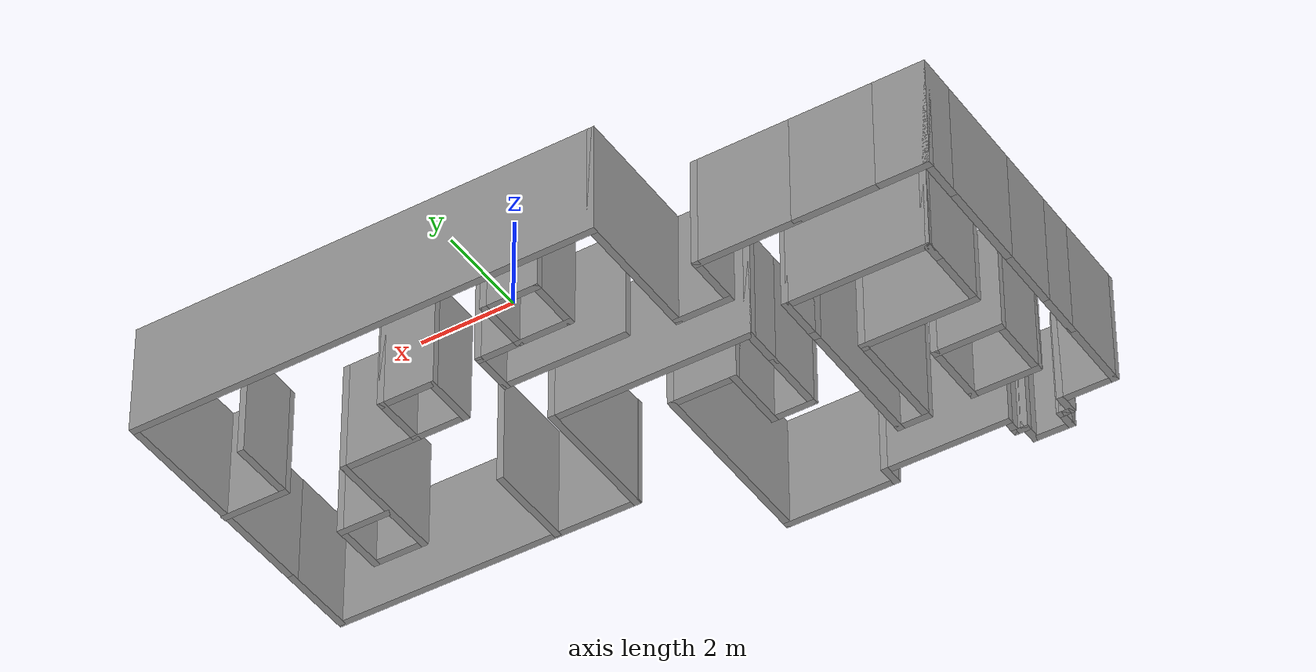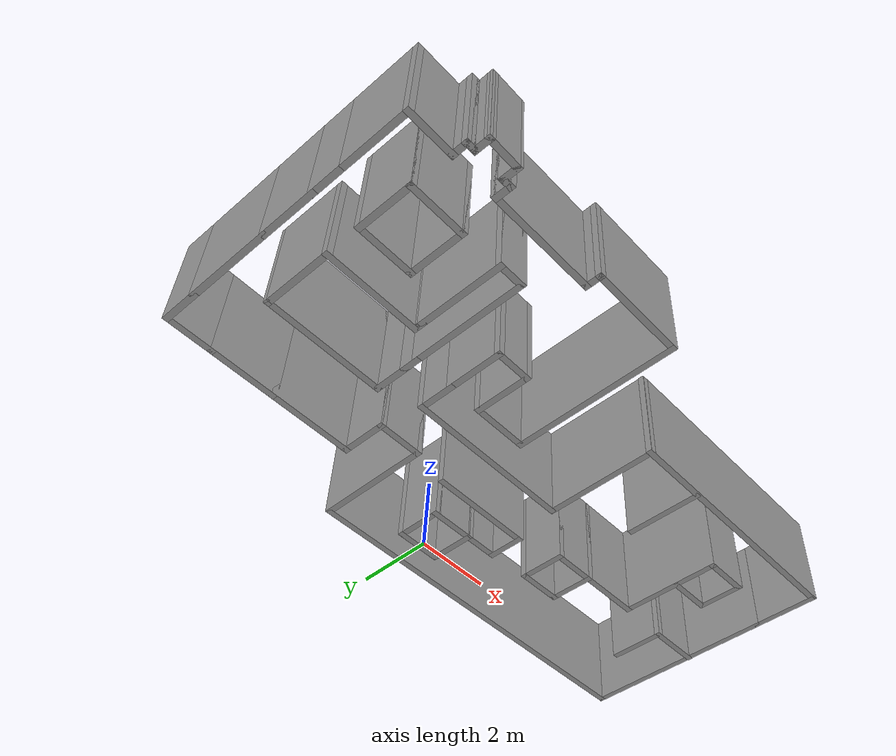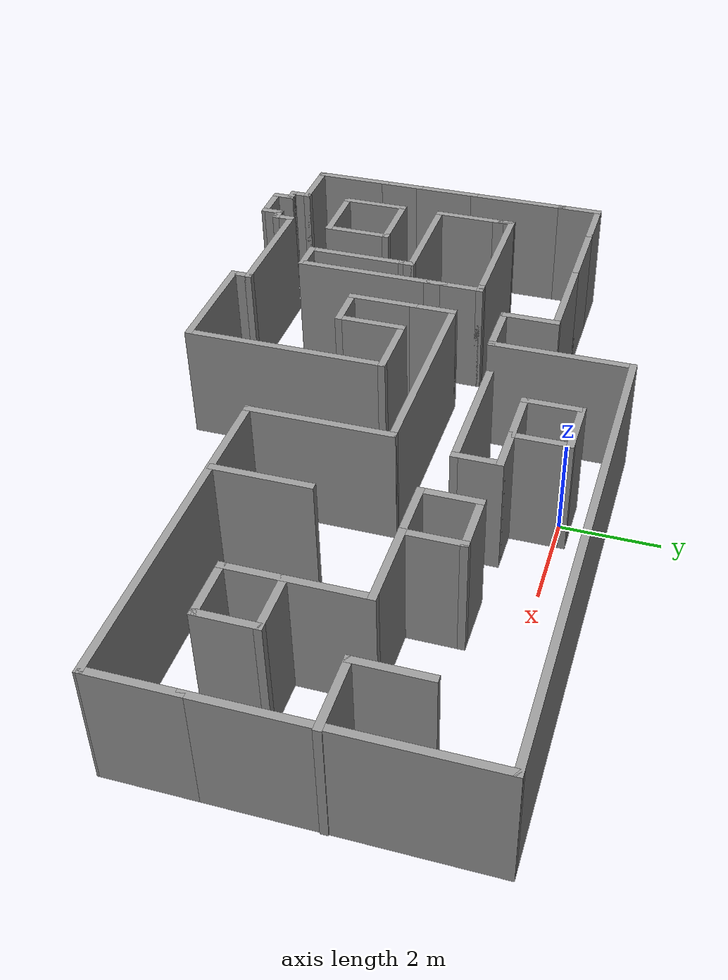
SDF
<?xml version='1.0'?>
<sdf version='1.7'>
  <model name='museum_final'>
    <pose>-0.132026 -3.75187 0 0 -0 0</pose>
    <link name='Wall_0'>
      <collision name='Wall_0_Collision'>
        <geometry>
          <box>
            <size>0.5 0.15 2.5</size>
          </box>
        </geometry>
        <pose>0 0 1.25 0 -0 0</pose>
      </collision>
      <visual name='Wall_0_Visual'>
        <pose>0 0 1.25 0 -0 0</pose>
        <geometry>
          <box>
            <size>0.5 0.15 2.5</size>
          </box>
        </geometry>
        <material>
          <script>
            <uri>file://media/materials/scripts/gazebo.material</uri>
            <name>Gazebo/Grey</name>
          </script>
          <ambient>1 1 1 1</ambient>
        </material>
        <meta>
          <layer>0</layer>
        </meta>
      </visual>
      <pose>-3.16052 -4.0645 0 0 -0 1.5708</pose>
    </link>
    <link name='Wall_1'>
      <collision name='Wall_1_Collision'>
        <geometry>
          <box>
            <size>2.75 0.15 2.5</size>
          </box>
        </geometry>
        <pose>0 0 1.25 0 -0 0</pose>
      </collision>
      <visual name='Wall_1_Visual'>
        <pose>0 0 1.25 0 -0 0</pose>
        <geometry>
          <box>
            <size>2.75 0.15 2.5</size>
          </box>
        </geometry>
        <material>
          <script>
            <uri>file://media/materials/scripts/gazebo.material</uri>
            <name>Gazebo/Grey</name>
          </script>
          <ambient>1 1 1 1</ambient>
        </material>
        <meta>
          <layer>0</layer>
        </meta>
      </visual>
      <pose>-4.46052 -3.8895 0 0 -0 3.14159</pose>
    </link>
    <link name='Wall_105'>
      <collision name='Wall_105_Collision'>
        <geometry>
          <box>
            <size>2.25 0.15 2.5</size>
          </box>
        </geometry>
        <pose>0 0 1.25 0 -0 0</pose>
      </collision>
      <visual name='Wall_105_Visual'>
        <pose>0 0 1.25 0 -0 0</pose>
        <geometry>
          <box>
            <size>2.25 0.15 2.5</size>
          </box>
        </geometry>
        <material>
          <script>
            <uri>file://media/materials/scripts/gazebo.material</uri>
            <name>Gazebo/Grey</name>
          </script>
          <ambient>1 1 1 1</ambient>
        </material>
        <meta>
          <layer>0</layer>
        </meta>
      </visual>
      <pose>-4.26052 2.8505 0 0 -0 0</pose>
    </link>
    <link name='Wall_11'>
      <collision name='Wall_11_Collision'>
        <geometry>
          <box>
            <size>0.25 0.15 2.5</size>
          </box>
        </geometry>
        <pose>0 0 1.25 0 -0 0</pose>
      </collision>
      <visual name='Wall_11_Visual'>
        <pose>0 0 1.25 0 -0 0</pose>
        <geometry>
          <box>
            <size>0.25 0.15 2.5</size>
          </box>
        </geometry>
        <material>
          <script>
            <uri>file://media/materials/scripts/gazebo.material</uri>
            <name>Gazebo/Grey</name>
          </script>
          <ambient>1 1 1 1</ambient>
        </material>
        <meta>
          <layer>0</layer>
        </meta>
      </visual>
      <pose>-6.76052 -4.2495 0 0 -0 3.14159</pose>
    </link>
    <link name='Wall_110'>
      <collision name='Wall_110_Collision'>
        <geometry>
          <box>
            <size>1.25 0.15 2.5</size>
          </box>
        </geometry>
        <pose>0 0 1.25 0 -0 0</pose>
      </collision>
      <visual name='Wall_110_Visual'>
        <pose>0 0 1.25 0 -0 0</pose>
        <geometry>
          <box>
            <size>1.25 0.15 2.5</size>
          </box>
        </geometry>
        <material>
          <script>
            <uri>file://media/materials/scripts/gazebo.material</uri>
            <name>Gazebo/Grey</name>
          </script>
          <ambient>1 1 1 1</ambient>
        </material>
        <meta>
          <layer>0</layer>
        </meta>
      </visual>
      <pose>-3.21052 2.3005 0 0 -0 -1.5708</pose>
    </link>
    <link name='Wall_111'>
      <collision name='Wall_111_Collision'>
        <geometry>
          <box>
            <size>1.25 0.15 2.5</size>
          </box>
        </geometry>
        <pose>0 0 1.25 0 -0 0</pose>
      </collision>
      <visual name='Wall_111_Visual'>
        <pose>0 0 1.25 0 -0 0</pose>
        <geometry>
          <box>
            <size>1.25 0.15 2.5</size>
          </box>
        </geometry>
        <material>
          <script>
            <uri>file://media/materials/scripts/gazebo.material</uri>
            <name>Gazebo/Grey</name>
          </script>
          <ambient>1 1 1 1</ambient>
        </material>
        <meta>
          <layer>0</layer>
        </meta>
      </visual>
      <pose>-2.66052 1.7505 0 0 -0 0</pose>
    </link>
    <link name='Wall_113'>
      <collision name='Wall_113_Collision'>
        <geometry>
          <box>
            <size>3 0.15 2.5</size>
          </box>
        </geometry>
        <pose>0 0 1.25 0 -0 0</pose>
      </collision>
      <visual name='Wall_113_Visual'>
        <pose>0 0 1.25 0 -0 0</pose>
        <geometry>
          <box>
            <size>3 0.15 2.5</size>
          </box>
        </geometry>
        <material>
          <script>
            <uri>file://media/materials/scripts/gazebo.material</uri>
            <name>Gazebo/Grey</name>
          </script>
          <ambient>1 1 1 1</ambient>
        </material>
        <meta>
          <layer>0</layer>
        </meta>
      </visual>
      <pose>-2.11052 3.1755 0 0 -0 1.5708</pose>
    </link>
    <link name='Wall_114'>
      <collision name='Wall_114_Collision'>
        <geometry>
          <box>
            <size>10.25 0.15 2.5</size>
          </box>
        </geometry>
        <pose>0 0 1.25 0 -0 0</pose>
      </collision>
      <visual name='Wall_114_Visual'>
        <pose>0 0 1.25 0 -0 0</pose>
        <geometry>
          <box>
            <size>10.25 0.15 2.5</size>
          </box>
        </geometry>
        <material>
          <script>
            <uri>file://media/materials/scripts/gazebo.material</uri>
            <name>Gazebo/Grey</name>
          </script>
          <ambient>1 1 1 1</ambient>
        </material>
        <meta>
          <layer>0</layer>
        </meta>
      </visual>
      <pose>2.93948 4.6005 0 0 -0 0</pose>
    </link>
    <link name='Wall_117'>
      <collision name='Wall_117_Collision'>
        <geometry>
          <box>
            <size>5.25 0.15 2.5</size>
          </box>
        </geometry>
        <pose>0 0 1.25 0 -0 0</pose>
      </collision>
      <visual name='Wall_117_Visual'>
        <pose>0 0 1.25 0 -0 0</pose>
        <geometry>
          <box>
            <size>5.25 0.15 2.5</size>
          </box>
        </geometry>
        <material>
          <script>
            <uri>file://media/materials/scripts/gazebo.material</uri>
            <name>Gazebo/Grey</name>
          </script>
          <ambient>1 1 1 1</ambient>
        </material>
        <meta>
          <layer>0</layer>
        </meta>
      </visual>
      <pose>7.98948 2.0505 0 0 -0 -1.5708</pose>
    </link>
    <link name='Wall_119'>
      <collision name='Wall_119_Collision'>
        <geometry>
          <box>
            <size>1.75 0.15 2.5</size>
          </box>
        </geometry>
        <pose>0 0 1.25 0 -0 0</pose>
      </collision>
      <visual name='Wall_119_Visual'>
        <pose>0 0 1.25 0 -0 0</pose>
        <geometry>
          <box>
            <size>1.75 0.15 2.5</size>
          </box>
        </geometry>
        <material>
          <script>
            <uri>file://media/materials/scripts/gazebo.material</uri>
            <name>Gazebo/Grey</name>
          </script>
          <ambient>1 1 1 1</ambient>
        </material>
        <meta>
          <layer>0</layer>
        </meta>
      </visual>
      <pose>7.98948 -1.2995 0 0 -0 -1.5708</pose>
    </link>
    <link name='Wall_12'>
      <collision name='Wall_12_Collision'>
        <geometry>
          <box>
            <size>0.25 0.15 2.5</size>
          </box>
        </geometry>
        <pose>0 0 1.25 0 -0 0</pose>
      </collision>
      <visual name='Wall_12_Visual'>
        <pose>0 0 1.25 0 -0 0</pose>
        <geometry>
          <box>
            <size>0.25 0.15 2.5</size>
          </box>
        </geometry>
        <material>
          <script>
            <uri>file://media/materials/scripts/gazebo.material</uri>
            <name>Gazebo/Grey</name>
          </script>
          <ambient>1 1 1 1</ambient>
        </material>
        <meta>
          <layer>0</layer>
        </meta>
      </visual>
      <pose>-6.86052 -4.2495 0 0 -0 3.14159</pose>
    </link>
    <link name='Wall_121'>
      <collision name='Wall_121_Collision'>
        <geometry>
          <box>
            <size>3 0.15 2.5</size>
          </box>
        </geometry>
        <pose>0 0 1.25 0 -0 0</pose>
      </collision>
      <visual name='Wall_121_Visual'>
        <pose>0 0 1.25 0 -0 0</pose>
        <geometry>
          <box>
            <size>3 0.15 2.5</size>
          </box>
        </geometry>
        <material>
          <script>
            <uri>file://media/materials/scripts/gazebo.material</uri>
            <name>Gazebo/Grey</name>
          </script>
          <ambient>1 1 1 1</ambient>
        </material>
        <meta>
          <layer>0</layer>
        </meta>
      </visual>
      <pose>-5.52236 1.04096 0 0 -0 0</pose>
    </link>
    <link name='Wall_122'>
      <collision name='Wall_122_Collision'>
        <geometry>
          <box>
            <size>0.25 0.15 2.5</size>
          </box>
        </geometry>
        <pose>0 0 1.25 0 -0 0</pose>
      </collision>
      <visual name='Wall_122_Visual'>
        <pose>0 0 1.25 0 -0 0</pose>
        <geometry>
          <box>
            <size>0.25 0.15 2.5</size>
          </box>
        </geometry>
        <material>
          <script>
            <uri>file://media/materials/scripts/gazebo.material</uri>
            <name>Gazebo/Grey</name>
          </script>
          <ambient>1 1 1 1</ambient>
        </material>
        <meta>
          <layer>0</layer>
        </meta>
      </visual>
      <pose>-4.04736 1.04096 0 0 -0 0</pose>
    </link>
    <link name='Wall_125'>
      <collision name='Wall_125_Collision'>
        <geometry>
          <box>
            <size>0.95 0.15 2.5</size>
          </box>
        </geometry>
        <pose>0 0 1.25 0 -0 0</pose>
      </collision>
      <visual name='Wall_125_Visual'>
        <pose>0 0 1.25 0 -0 0</pose>
        <geometry>
          <box>
            <size>0.95 0.15 2.5</size>
          </box>
        </geometry>
        <material>
          <script>
            <uri>file://media/materials/scripts/gazebo.material</uri>
            <name>Gazebo/Grey</name>
          </script>
          <ambient>1 1 1 1</ambient>
        </material>
        <meta>
          <layer>0</layer>
        </meta>
      </visual>
      <pose>-3.99736 0.640962 0 0 -0 1.5708</pose>
    </link>
    <link name='Wall_127'>
      <collision name='Wall_127_Collision'>
        <geometry>
          <box>
            <size>1.25 0.15 2.5</size>
          </box>
        </geometry>
        <pose>0 0 1.25 0 -0 0</pose>
      </collision>
      <visual name='Wall_127_Visual'>
        <pose>0 0 1.25 0 -0 0</pose>
        <geometry>
          <box>
            <size>1.25 0.15 2.5</size>
          </box>
        </geometry>
        <material>
          <script>
            <uri>file://media/materials/scripts/gazebo.material</uri>
            <name>Gazebo/Grey</name>
          </script>
          <ambient>1 1 1 1</ambient>
        </material>
        <meta>
          <layer>0</layer>
        </meta>
      </visual>
      <pose>-0.44997 3.3482 0 0 -0 -1.5708</pose>
    </link>
    <link name='Wall_128'>
      <collision name='Wall_128_Collision'>
        <geometry>
          <box>
            <size>1.25 0.15 2.5</size>
          </box>
        </geometry>
        <pose>0 0 1.25 0 -0 0</pose>
      </collision>
      <visual name='Wall_128_Visual'>
        <pose>0 0 1.25 0 -0 0</pose>
        <geometry>
          <box>
            <size>1.25 0.15 2.5</size>
          </box>
        </geometry>
        <material>
          <script>
            <uri>file://media/materials/scripts/gazebo.material</uri>
            <name>Gazebo/Grey</name>
          </script>
          <ambient>1 1 1 1</ambient>
        </material>
        <meta>
          <layer>0</layer>
        </meta>
      </visual>
      <pose>0.10003 2.7982 0 0 -0 0</pose>
    </link>
    <link name='Wall_129'>
      <collision name='Wall_129_Collision'>
        <geometry>
          <box>
            <size>1.25 0.15 2.5</size>
          </box>
        </geometry>
        <pose>0 0 1.25 0 -0 0</pose>
      </collision>
      <visual name='Wall_129_Visual'>
        <pose>0 0 1.25 0 -0 0</pose>
        <geometry>
          <box>
            <size>1.25 0.15 2.5</size>
          </box>
        </geometry>
        <material>
          <script>
            <uri>file://media/materials/scripts/gazebo.material</uri>
            <name>Gazebo/Grey</name>
          </script>
          <ambient>1 1 1 1</ambient>
        </material>
        <meta>
          <layer>0</layer>
        </meta>
      </visual>
      <pose>0.65003 3.3482 0 0 -0 1.5708</pose>
    </link>
    <link name='Wall_13'>
      <collision name='Wall_13_Collision'>
        <geometry>
          <box>
            <size>0.5 0.15 2.5</size>
          </box>
        </geometry>
        <pose>0 0 1.25 0 -0 0</pose>
      </collision>
      <visual name='Wall_13_Visual'>
        <pose>0 0 1.25 0 -0 0</pose>
        <geometry>
          <box>
            <size>0.5 0.15 2.5</size>
          </box>
        </geometry>
        <material>
          <script>
            <uri>file://media/materials/scripts/gazebo.material</uri>
            <name>Gazebo/Grey</name>
          </script>
          <ambient>1 1 1 1</ambient>
        </material>
        <meta>
          <layer>0</layer>
        </meta>
      </visual>
      <pose>-6.91052 -4.0745 0 0 -0 1.5708</pose>
    </link>
    <link name='Wall_130'>
      <collision name='Wall_130_Collision'>
        <geometry>
          <box>
            <size>1.25 0.15 2.5</size>
          </box>
        </geometry>
        <pose>0 0 1.25 0 -0 0</pose>
      </collision>
      <visual name='Wall_130_Visual'>
        <pose>0 0 1.25 0 -0 0</pose>
        <geometry>
          <box>
            <size>1.25 0.15 2.5</size>
          </box>
        </geometry>
        <material>
          <script>
            <uri>file://media/materials/scripts/gazebo.material</uri>
            <name>Gazebo/Grey</name>
          </script>
          <ambient>1 1 1 1</ambient>
        </material>
        <meta>
          <layer>0</layer>
        </meta>
      </visual>
      <pose>0.10003 3.8982 0 0 -0 3.14159</pose>
    </link>
    <link name='Wall_133'>
      <collision name='Wall_133_Collision'>
        <geometry>
          <box>
            <size>1.25 0.15 2.5</size>
          </box>
        </geometry>
        <pose>0 0 1.25 0 -0 0</pose>
      </collision>
      <visual name='Wall_133_Visual'>
        <pose>0 0 1.25 0 -0 0</pose>
        <geometry>
          <box>
            <size>1.25 0.15 2.5</size>
          </box>
        </geometry>
        <material>
          <script>
            <uri>file://media/materials/scripts/gazebo.material</uri>
            <name>Gazebo/Grey</name>
          </script>
          <ambient>1 1 1 1</ambient>
        </material>
        <meta>
          <layer>0</layer>
        </meta>
      </visual>
      <pose>2.61058 2.16971 0 0 -0 -1.5708</pose>
    </link>
    <link name='Wall_134'>
      <collision name='Wall_134_Collision'>
        <geometry>
          <box>
            <size>1.25 0.15 2.5</size>
          </box>
        </geometry>
        <pose>0 0 1.25 0 -0 0</pose>
      </collision>
      <visual name='Wall_134_Visual'>
        <pose>0 0 1.25 0 -0 0</pose>
        <geometry>
          <box>
            <size>1.25 0.15 2.5</size>
          </box>
        </geometry>
        <material>
          <script>
            <uri>file://media/materials/scripts/gazebo.material</uri>
            <name>Gazebo/Grey</name>
          </script>
          <ambient>1 1 1 1</ambient>
        </material>
        <meta>
          <layer>0</layer>
        </meta>
      </visual>
      <pose>3.16058 1.61971 0 0 -0 0</pose>
    </link>
    <link name='Wall_135'>
      <collision name='Wall_135_Collision'>
        <geometry>
          <box>
            <size>1.25 0.15 2.5</size>
          </box>
        </geometry>
        <pose>0 0 1.25 0 -0 0</pose>
      </collision>
      <visual name='Wall_135_Visual'>
        <pose>0 0 1.25 0 -0 0</pose>
        <geometry>
          <box>
            <size>1.25 0.15 2.5</size>
          </box>
        </geometry>
        <material>
          <script>
            <uri>file://media/materials/scripts/gazebo.material</uri>
            <name>Gazebo/Grey</name>
          </script>
          <ambient>1 1 1 1</ambient>
        </material>
        <meta>
          <layer>0</layer>
        </meta>
      </visual>
      <pose>3.71058 2.16971 0 0 -0 1.5708</pose>
    </link>
    <link name='Wall_136'>
      <collision name='Wall_136_Collision'>
        <geometry>
          <box>
            <size>1.25 0.15 2.5</size>
          </box>
        </geometry>
        <pose>0 0 1.25 0 -0 0</pose>
      </collision>
      <visual name='Wall_136_Visual'>
        <pose>0 0 1.25 0 -0 0</pose>
        <geometry>
          <box>
            <size>1.25 0.15 2.5</size>
          </box>
        </geometry>
        <material>
          <script>
            <uri>file://media/materials/scripts/gazebo.material</uri>
            <name>Gazebo/Grey</name>
          </script>
          <ambient>1 1 1 1</ambient>
        </material>
        <meta>
          <layer>0</layer>
        </meta>
      </visual>
      <pose>3.16058 2.71971 0 0 -0 3.14159</pose>
    </link>
    <link name='Wall_14'>
      <collision name='Wall_14_Collision'>
        <geometry>
          <box>
            <size>1.25 0.15 2.5</size>
          </box>
        </geometry>
        <pose>0 0 1.25 0 -0 0</pose>
      </collision>
      <visual name='Wall_14_Visual'>
        <pose>0 0 1.25 0 -0 0</pose>
        <geometry>
          <box>
            <size>1.25 0.15 2.5</size>
          </box>
        </geometry>
        <material>
          <script>
            <uri>file://media/materials/scripts/gazebo.material</uri>
            <name>Gazebo/Grey</name>
          </script>
          <ambient>1 1 1 1</ambient>
        </material>
        <meta>
          <layer>0</layer>
        </meta>
      </visual>
      <pose>-7.46052 -3.8995 0 0 -0 3.14159</pose>
    </link>
    <link name='Wall_145'>
      <collision name='Wall_145_Collision'>
        <geometry>
          <box>
            <size>2 0.15 2.5</size>
          </box>
        </geometry>
        <pose>0 0 1.25 0 -0 0</pose>
      </collision>
      <visual name='Wall_145_Visual'>
        <pose>0 0 1.25 0 -0 0</pose>
        <geometry>
          <box>
            <size>2 0.15 2.5</size>
          </box>
        </geometry>
        <material>
          <script>
            <uri>file://media/materials/scripts/gazebo.material</uri>
            <name>Gazebo/Grey</name>
          </script>
          <ambient>1 1 1 1</ambient>
        </material>
        <meta>
          <layer>0</layer>
        </meta>
      </visual>
      <pose>3.03273 -1.17478 0 0 -0 1.5708</pose>
    </link>
    <link name='Wall_15'>
      <collision name='Wall_15_Collision'>
        <geometry>
          <box>
            <size>1.75 0.15 2.5</size>
          </box>
        </geometry>
        <pose>0 0 1.25 0 -0 0</pose>
      </collision>
      <visual name='Wall_15_Visual'>
        <pose>0 0 1.25 0 -0 0</pose>
        <geometry>
          <box>
            <size>1.75 0.15 2.5</size>
          </box>
        </geometry>
        <material>
          <script>
            <uri>file://media/materials/scripts/gazebo.material</uri>
            <name>Gazebo/Grey</name>
          </script>
          <ambient>1 1 1 1</ambient>
        </material>
        <meta>
          <layer>0</layer>
        </meta>
      </visual>
      <pose>-8.01052 -3.0995 0 0 -0 1.5708</pose>
    </link>
    <link name='Wall_154'>
      <collision name='Wall_154_Collision'>
        <geometry>
          <box>
            <size>1.75 0.15 2.5</size>
          </box>
        </geometry>
        <pose>0 0 1.25 0 -0 0</pose>
      </collision>
      <visual name='Wall_154_Visual'>
        <pose>0 0 1.25 0 -0 0</pose>
        <geometry>
          <box>
            <size>1.75 0.15 2.5</size>
          </box>
        </geometry>
        <material>
          <script>
            <uri>file://media/materials/scripts/gazebo.material</uri>
            <name>Gazebo/Grey</name>
          </script>
          <ambient>1 1 1 1</ambient>
        </material>
        <meta>
          <layer>0</layer>
        </meta>
      </visual>
      <pose>4.51058 1.61971 0 0 -0 0</pose>
    </link>
    <link name='Wall_155'>
      <collision name='Wall_155_Collision'>
        <geometry>
          <box>
            <size>2.75 0.15 2.5</size>
          </box>
        </geometry>
        <pose>0 0 1.25 0 -0 0</pose>
      </collision>
      <visual name='Wall_155_Visual'>
        <pose>0 0 1.25 0 -0 0</pose>
        <geometry>
          <box>
            <size>2.75 0.15 2.5</size>
          </box>
        </geometry>
        <material>
          <script>
            <uri>file://media/materials/scripts/gazebo.material</uri>
            <name>Gazebo/Grey</name>
          </script>
          <ambient>1 1 1 1</ambient>
        </material>
        <meta>
          <layer>0</layer>
        </meta>
      </visual>
      <pose>5.31058 0.319714 0 0 -0 -1.5708</pose>
    </link>
    <link name='Wall_156'>
      <collision name='Wall_156_Collision'>
        <geometry>
          <box>
            <size>1.25 0.15 2.5</size>
          </box>
        </geometry>
        <pose>0 0 1.25 0 -0 0</pose>
      </collision>
      <visual name='Wall_156_Visual'>
        <pose>0 0 1.25 0 -0 0</pose>
        <geometry>
          <box>
            <size>1.25 0.15 2.5</size>
          </box>
        </geometry>
        <material>
          <script>
            <uri>file://media/materials/scripts/gazebo.material</uri>
            <name>Gazebo/Grey</name>
          </script>
          <ambient>1 1 1 1</ambient>
        </material>
        <meta>
          <layer>0</layer>
        </meta>
      </visual>
      <pose>5.86058 -0.980286 0 0 -0 0</pose>
    </link>
    <link name='Wall_157'>
      <collision name='Wall_157_Collision'>
        <geometry>
          <box>
            <size>1.25 0.15 2.5</size>
          </box>
        </geometry>
        <pose>0 0 1.25 0 -0 0</pose>
      </collision>
      <visual name='Wall_157_Visual'>
        <pose>0 0 1.25 0 -0 0</pose>
        <geometry>
          <box>
            <size>1.25 0.15 2.5</size>
          </box>
        </geometry>
        <material>
          <script>
            <uri>file://media/materials/scripts/gazebo.material</uri>
            <name>Gazebo/Grey</name>
          </script>
          <ambient>1 1 1 1</ambient>
        </material>
        <meta>
          <layer>0</layer>
        </meta>
      </visual>
      <pose>6.41058 -0.430285 0 0 -0 1.5708</pose>
    </link>
    <link name='Wall_158'>
      <collision name='Wall_158_Collision'>
        <geometry>
          <box>
            <size>1.25 0.15 2.5</size>
          </box>
        </geometry>
        <pose>0 0 1.25 0 -0 0</pose>
      </collision>
      <visual name='Wall_158_Visual'>
        <pose>0 0 1.25 0 -0 0</pose>
        <geometry>
          <box>
            <size>1.25 0.15 2.5</size>
          </box>
        </geometry>
        <material>
          <script>
            <uri>file://media/materials/scripts/gazebo.material</uri>
            <name>Gazebo/Grey</name>
          </script>
          <ambient>1 1 1 1</ambient>
        </material>
        <meta>
          <layer>0</layer>
        </meta>
      </visual>
      <pose>5.86058 0.119714 0 0 -0 3.14159</pose>
    </link>
    <link name='Wall_16'>
      <collision name='Wall_16_Collision'>
        <geometry>
          <box>
            <size>1 0.15 2.5</size>
          </box>
        </geometry>
        <pose>0 0 1.25 0 -0 0</pose>
      </collision>
      <visual name='Wall_16_Visual'>
        <pose>0 0 1.25 0 -0 0</pose>
        <geometry>
          <box>
            <size>1 0.15 2.5</size>
          </box>
        </geometry>
        <material>
          <script>
            <uri>file://media/materials/scripts/gazebo.material</uri>
            <name>Gazebo/Grey</name>
          </script>
          <ambient>1 1 1 1</ambient>
        </material>
        <meta>
          <layer>0</layer>
        </meta>
      </visual>
      <pose>-8.01052 -1.8745 0 0 -0 1.5708</pose>
    </link>
    <link name='Wall_160'>
      <collision name='Wall_160_Collision'>
        <geometry>
          <box>
            <size>1 0.15 2.5</size>
          </box>
        </geometry>
        <pose>0 0 1.25 0 -0 0</pose>
      </collision>
      <visual name='Wall_160_Visual'>
        <pose>0 0 1.25 0 -0 0</pose>
        <geometry>
          <box>
            <size>1 0.15 2.5</size>
          </box>
        </geometry>
        <material>
          <script>
            <uri>file://media/materials/scripts/gazebo.material</uri>
            <name>Gazebo/Grey</name>
          </script>
          <ambient>1 1 1 1</ambient>
        </material>
        <meta>
          <layer>0</layer>
        </meta>
      </visual>
      <pose>1.07503 2.7982 0 0 -0 0</pose>
    </link>
    <link name='Wall_161'>
      <collision name='Wall_161_Collision'>
        <geometry>
          <box>
            <size>1 0.15 2.5</size>
          </box>
        </geometry>
        <pose>0 0 1.25 0 -0 0</pose>
      </collision>
      <visual name='Wall_161_Visual'>
        <pose>0 0 1.25 0 -0 0</pose>
        <geometry>
          <box>
            <size>1 0.15 2.5</size>
          </box>
        </geometry>
        <material>
          <script>
            <uri>file://media/materials/scripts/gazebo.material</uri>
            <name>Gazebo/Grey</name>
          </script>
          <ambient>1 1 1 1</ambient>
        </material>
        <meta>
          <layer>0</layer>
        </meta>
      </visual>
      <pose>1.50003 2.3732 0 0 -0 -1.5708</pose>
    </link>
    <link name='Wall_162'>
      <collision name='Wall_162_Collision'>
        <geometry>
          <box>
            <size>2.75 0.15 2.5</size>
          </box>
        </geometry>
        <pose>0 0 1.25 0 -0 0</pose>
      </collision>
      <visual name='Wall_162_Visual'>
        <pose>0 0 1.25 0 -0 0</pose>
        <geometry>
          <box>
            <size>2.75 0.15 2.5</size>
          </box>
        </geometry>
        <material>
          <script>
            <uri>file://media/materials/scripts/gazebo.material</uri>
            <name>Gazebo/Grey</name>
          </script>
          <ambient>1 1 1 1</ambient>
        </material>
        <meta>
          <layer>0</layer>
        </meta>
      </visual>
      <pose>0.20003 1.9482 0 0 -0 3.14159</pose>
    </link>
    <link name='Wall_164'>
      <collision name='Wall_164_Collision'>
        <geometry>
          <box>
            <size>1.5 0.15 2.5</size>
          </box>
        </geometry>
        <pose>0 0 1.25 0 -0 0</pose>
      </collision>
      <visual name='Wall_164_Visual'>
        <pose>0 0 1.25 0 -0 0</pose>
        <geometry>
          <box>
            <size>1.5 0.15 2.5</size>
          </box>
        </geometry>
        <material>
          <script>
            <uri>file://media/materials/scripts/gazebo.material</uri>
            <name>Gazebo/Grey</name>
          </script>
          <ambient>1 1 1 1</ambient>
        </material>
        <meta>
          <layer>0</layer>
        </meta>
      </visual>
      <pose>7.33552 1.66435 0 0 -0 3.14159</pose>
    </link>
    <link name='Wall_165'>
      <collision name='Wall_165_Collision'>
        <geometry>
          <box>
            <size>1.5 0.15 2.5</size>
          </box>
        </geometry>
        <pose>0 0 1.25 0 -0 0</pose>
      </collision>
      <visual name='Wall_165_Visual'>
        <pose>0 0 1.25 0 -0 0</pose>
        <geometry>
          <box>
            <size>1.5 0.15 2.5</size>
          </box>
        </geometry>
        <material>
          <script>
            <uri>file://media/materials/scripts/gazebo.material</uri>
            <name>Gazebo/Grey</name>
          </script>
          <ambient>1 1 1 1</ambient>
        </material>
        <meta>
          <layer>0</layer>
        </meta>
      </visual>
      <pose>6.66052 2.33935 0 0 -0 1.5708</pose>
    </link>
    <link name='Wall_2'>
      <collision name='Wall_2_Collision'>
        <geometry>
          <box>
            <size>0.5 0.15 2.5</size>
          </box>
        </geometry>
        <pose>0 0 1.25 0 -0 0</pose>
      </collision>
      <visual name='Wall_2_Visual'>
        <pose>0 0 1.25 0 -0 0</pose>
        <geometry>
          <box>
            <size>0.5 0.15 2.5</size>
          </box>
        </geometry>
        <material>
          <script>
            <uri>file://media/materials/scripts/gazebo.material</uri>
            <name>Gazebo/Grey</name>
          </script>
          <ambient>1 1 1 1</ambient>
        </material>
        <meta>
          <layer>0</layer>
        </meta>
      </visual>
      <pose>-5.76052 -4.0645 0 0 -0 -1.5708</pose>
    </link>
    <link name='Wall_22'>
      <collision name='Wall_22_Collision'>
        <geometry>
          <box>
            <size>0.900067 0.15 2.5</size>
          </box>
        </geometry>
        <pose>0 0 1.25 0 -0 0</pose>
      </collision>
      <visual name='Wall_22_Visual'>
        <pose>0 0 1.25 0 -0 0</pose>
        <geometry>
          <box>
            <size>0.900067 0.15 2.5</size>
          </box>
        </geometry>
        <material>
          <script>
            <uri>file://media/materials/scripts/gazebo.material</uri>
            <name>Gazebo/Grey</name>
          </script>
          <ambient>1 1 1 1</ambient>
        </material>
        <meta>
          <layer>0</layer>
        </meta>
      </visual>
      <pose>-6.33552 -4.5945 0 0 -0 0.013333</pose>
    </link>
    <link name='Wall_25'>
      <collision name='Wall_25_Collision'>
        <geometry>
          <box>
            <size>1.5 0.15 2.5</size>
          </box>
        </geometry>
        <pose>0 0 1.25 0 -0 0</pose>
      </collision>
      <visual name='Wall_25_Visual'>
        <pose>0 0 1.25 0 -0 0</pose>
        <geometry>
          <box>
            <size>1.5 0.15 2.5</size>
          </box>
        </geometry>
        <material>
          <script>
            <uri>file://media/materials/scripts/gazebo.material</uri>
            <name>Gazebo/Grey</name>
          </script>
          <ambient>1 1 1 1</ambient>
        </material>
        <meta>
          <layer>0</layer>
        </meta>
      </visual>
      <pose>-6.27926 -2.90206 0 0 -0 0</pose>
    </link>
    <link name='Wall_26'>
      <collision name='Wall_26_Collision'>
        <geometry>
          <box>
            <size>1.5 0.15 2.5</size>
          </box>
        </geometry>
        <pose>0 0 1.25 0 -0 0</pose>
      </collision>
      <visual name='Wall_26_Visual'>
        <pose>0 0 1.25 0 -0 0</pose>
        <geometry>
          <box>
            <size>1.5 0.15 2.5</size>
          </box>
        </geometry>
        <material>
          <script>
            <uri>file://media/materials/scripts/gazebo.material</uri>
            <name>Gazebo/Grey</name>
          </script>
          <ambient>1 1 1 1</ambient>
        </material>
        <meta>
          <layer>0</layer>
        </meta>
      </visual>
      <pose>-5.60426 -2.22706 0 0 -0 1.5708</pose>
    </link>
    <link name='Wall_27'>
      <collision name='Wall_27_Collision'>
        <geometry>
          <box>
            <size>1.5 0.15 2.5</size>
          </box>
        </geometry>
        <pose>0 0 1.25 0 -0 0</pose>
      </collision>
      <visual name='Wall_27_Visual'>
        <pose>0 0 1.25 0 -0 0</pose>
        <geometry>
          <box>
            <size>1.5 0.15 2.5</size>
          </box>
        </geometry>
        <material>
          <script>
            <uri>file://media/materials/scripts/gazebo.material</uri>
            <name>Gazebo/Grey</name>
          </script>
          <ambient>1 1 1 1</ambient>
        </material>
        <meta>
          <layer>0</layer>
        </meta>
      </visual>
      <pose>-6.27926 -1.55206 0 0 -0 3.14159</pose>
    </link>
    <link name='Wall_28'>
      <collision name='Wall_28_Collision'>
        <geometry>
          <box>
            <size>1.5 0.15 2.5</size>
          </box>
        </geometry>
        <pose>0 0 1.25 0 -0 0</pose>
      </collision>
      <visual name='Wall_28_Visual'>
        <pose>0 0 1.25 0 -0 0</pose>
        <geometry>
          <box>
            <size>1.5 0.15 2.5</size>
          </box>
        </geometry>
        <material>
          <script>
            <uri>file://media/materials/scripts/gazebo.material</uri>
            <name>Gazebo/Grey</name>
          </script>
          <ambient>1 1 1 1</ambient>
        </material>
        <meta>
          <layer>0</layer>
        </meta>
      </visual>
      <pose>-6.95426 -2.22706 0 0 -0 -1.5708</pose>
    </link>
    <link name='Wall_3'>
      <collision name='Wall_3_Collision'>
        <geometry>
          <box>
            <size>0.25 0.15 2.5</size>
          </box>
        </geometry>
        <pose>0 0 1.25 0 -0 0</pose>
      </collision>
      <visual name='Wall_3_Visual'>
        <pose>0 0 1.25 0 -0 0</pose>
        <geometry>
          <box>
            <size>0.25 0.15 2.5</size>
          </box>
        </geometry>
        <material>
          <script>
            <uri>file://media/materials/scripts/gazebo.material</uri>
            <name>Gazebo/Grey</name>
          </script>
          <ambient>1 1 1 1</ambient>
        </material>
        <meta>
          <layer>0</layer>
        </meta>
      </visual>
      <pose>-5.81052 -4.2395 0 0 -0 3.14159</pose>
    </link>
    <link name='Wall_30'>
      <collision name='Wall_30_Collision'>
        <geometry>
          <box>
            <size>2.5 0.15 2.5</size>
          </box>
        </geometry>
        <pose>0 0 1.25 0 -0 0</pose>
      </collision>
      <visual name='Wall_30_Visual'>
        <pose>0 0 1.25 0 -0 0</pose>
        <geometry>
          <box>
            <size>2.5 0.15 2.5</size>
          </box>
        </geometry>
        <material>
          <script>
            <uri>file://media/materials/scripts/gazebo.material</uri>
            <name>Gazebo/Grey</name>
          </script>
          <ambient>1 1 1 1</ambient>
        </material>
        <meta>
          <layer>0</layer>
        </meta>
      </visual>
      <pose>-1.98552 -4.2395 0 0 -0 0</pose>
    </link>
    <link name='Wall_31'>
      <collision name='Wall_31_Collision'>
        <geometry>
          <box>
            <size>4.25 0.15 2.5</size>
          </box>
        </geometry>
        <pose>0 0 1.25 0 -0 0</pose>
      </collision>
      <visual name='Wall_31_Visual'>
        <pose>0 0 1.25 0 -0 0</pose>
        <geometry>
          <box>
            <size>4.25 0.15 2.5</size>
          </box>
        </geometry>
        <material>
          <script>
            <uri>file://media/materials/scripts/gazebo.material</uri>
            <name>Gazebo/Grey</name>
          </script>
          <ambient>1 1 1 1</ambient>
        </material>
        <meta>
          <layer>0</layer>
        </meta>
      </visual>
      <pose>-0.810523 -2.1895 0 0 -0 1.5708</pose>
    </link>
    <link name='Wall_32'>
      <collision name='Wall_32_Collision'>
        <geometry>
          <box>
            <size>1.5 0.15 2.5</size>
          </box>
        </geometry>
        <pose>0 0 1.25 0 -0 0</pose>
      </collision>
      <visual name='Wall_32_Visual'>
        <pose>0 0 1.25 0 -0 0</pose>
        <geometry>
          <box>
            <size>1.5 0.15 2.5</size>
          </box>
        </geometry>
        <material>
          <script>
            <uri>file://media/materials/scripts/gazebo.material</uri>
            <name>Gazebo/Grey</name>
          </script>
          <ambient>1 1 1 1</ambient>
        </material>
        <meta>
          <layer>0</layer>
        </meta>
      </visual>
      <pose>-1.48552 -0.139503 0 0 -0 3.14159</pose>
    </link>
    <link name='Wall_33'>
      <collision name='Wall_33_Collision'>
        <geometry>
          <box>
            <size>1.5 0.15 2.5</size>
          </box>
        </geometry>
        <pose>0 0 1.25 0 -0 0</pose>
      </collision>
      <visual name='Wall_33_Visual'>
        <pose>0 0 1.25 0 -0 0</pose>
        <geometry>
          <box>
            <size>1.5 0.15 2.5</size>
          </box>
        </geometry>
        <material>
          <script>
            <uri>file://media/materials/scripts/gazebo.material</uri>
            <name>Gazebo/Grey</name>
          </script>
          <ambient>1 1 1 1</ambient>
        </material>
        <meta>
          <layer>0</layer>
        </meta>
      </visual>
      <pose>-2.16052 -0.814503 0 0 -0 -1.5708</pose>
    </link>
    <link name='Wall_34'>
      <collision name='Wall_34_Collision'>
        <geometry>
          <box>
            <size>1 0.15 2.5</size>
          </box>
        </geometry>
        <pose>0 0 1.25 0 -0 0</pose>
      </collision>
      <visual name='Wall_34_Visual'>
        <pose>0 0 1.25 0 -0 0</pose>
        <geometry>
          <box>
            <size>1 0.15 2.5</size>
          </box>
        </geometry>
        <material>
          <script>
            <uri>file://media/materials/scripts/gazebo.material</uri>
            <name>Gazebo/Grey</name>
          </script>
          <ambient>1 1 1 1</ambient>
        </material>
        <meta>
          <layer>0</layer>
        </meta>
      </visual>
      <pose>-2.58552 -1.4895 0 0 -0 3.14159</pose>
    </link>
    <link name='Wall_35'>
      <collision name='Wall_35_Collision'>
        <geometry>
          <box>
            <size>1.5 0.15 2.5</size>
          </box>
        </geometry>
        <pose>0 0 1.25 0 -0 0</pose>
      </collision>
      <visual name='Wall_35_Visual'>
        <pose>0 0 1.25 0 -0 0</pose>
        <geometry>
          <box>
            <size>1.5 0.15 2.5</size>
          </box>
        </geometry>
        <material>
          <script>
            <uri>file://media/materials/scripts/gazebo.material</uri>
            <name>Gazebo/Grey</name>
          </script>
          <ambient>1 1 1 1</ambient>
        </material>
        <meta>
          <layer>0</layer>
        </meta>
      </visual>
      <pose>-3.01052 -0.814503 0 0 -0 1.5708</pose>
    </link>
    <link name='Wall_38'>
      <collision name='Wall_38_Collision'>
        <geometry>
          <box>
            <size>1.5 0.15 2.5</size>
          </box>
        </geometry>
        <pose>0 0 1.25 0 -0 0</pose>
      </collision>
      <visual name='Wall_38_Visual'>
        <pose>0 0 1.25 0 -0 0</pose>
        <geometry>
          <box>
            <size>1.5 0.15 2.5</size>
          </box>
        </geometry>
        <material>
          <script>
            <uri>file://media/materials/scripts/gazebo.material</uri>
            <name>Gazebo/Grey</name>
          </script>
          <ambient>1 1 1 1</ambient>
        </material>
        <meta>
          <layer>0</layer>
        </meta>
      </visual>
      <pose>-8.01052 -0.774503 0 0 -0 1.5708</pose>
    </link>
    <link name='Wall_39'>
      <collision name='Wall_39_Collision'>
        <geometry>
          <box>
            <size>2.25 0.15 2.5</size>
          </box>
        </geometry>
        <pose>0 0 1.25 0 -0 0</pose>
      </collision>
      <visual name='Wall_39_Visual'>
        <pose>0 0 1.25 0 -0 0</pose>
        <geometry>
          <box>
            <size>2.25 0.15 2.5</size>
          </box>
        </geometry>
        <material>
          <script>
            <uri>file://media/materials/scripts/gazebo.material</uri>
            <name>Gazebo/Grey</name>
          </script>
          <ambient>1 1 1 1</ambient>
        </material>
        <meta>
          <layer>0</layer>
        </meta>
      </visual>
      <pose>-8.01052 0.950497 0 0 -0 1.5708</pose>
    </link>
    <link name='Wall_4'>
      <collision name='Wall_4_Collision'>
        <geometry>
          <box>
            <size>0.25 0.15 2.5</size>
          </box>
        </geometry>
        <pose>0 0 1.25 0 -0 0</pose>
      </collision>
      <visual name='Wall_4_Visual'>
        <pose>0 0 1.25 0 -0 0</pose>
        <geometry>
          <box>
            <size>0.25 0.15 2.5</size>
          </box>
        </geometry>
        <material>
          <script>
            <uri>file://media/materials/scripts/gazebo.material</uri>
            <name>Gazebo/Grey</name>
          </script>
          <ambient>1 1 1 1</ambient>
        </material>
        <meta>
          <layer>0</layer>
        </meta>
      </visual>
      <pose>-5.91052 -4.2395 0 0 -0 3.14159</pose>
    </link>
    <link name='Wall_44'>
      <collision name='Wall_44_Collision'>
        <geometry>
          <box>
            <size>0.75 0.15 2.5</size>
          </box>
        </geometry>
        <pose>0 0 1.25 0 -0 0</pose>
      </collision>
      <visual name='Wall_44_Visual'>
        <pose>0 0 1.25 0 -0 0</pose>
        <geometry>
          <box>
            <size>0.75 0.15 2.5</size>
          </box>
        </geometry>
        <material>
          <script>
            <uri>file://media/materials/scripts/gazebo.material</uri>
            <name>Gazebo/Grey</name>
          </script>
          <ambient>1 1 1 1</ambient>
        </material>
        <meta>
          <layer>0</layer>
        </meta>
      </visual>
      <pose>-4.29736 -2.95904 0 0 -0 0</pose>
    </link>
    <link name='Wall_45'>
      <collision name='Wall_45_Collision'>
        <geometry>
          <box>
            <size>3 0.15 2.5</size>
          </box>
        </geometry>
        <pose>0 0 1.25 0 -0 0</pose>
      </collision>
      <visual name='Wall_45_Visual'>
        <pose>0 0 1.25 0 -0 0</pose>
        <geometry>
          <box>
            <size>3 0.15 2.5</size>
          </box>
        </geometry>
        <material>
          <script>
            <uri>file://media/materials/scripts/gazebo.material</uri>
            <name>Gazebo/Grey</name>
          </script>
          <ambient>1 1 1 1</ambient>
        </material>
        <meta>
          <layer>0</layer>
        </meta>
      </visual>
      <pose>-3.99736 -1.53404 0 0 -0 1.5708</pose>
    </link>
    <link name='Wall_49'>
      <collision name='Wall_49_Collision'>
        <geometry>
          <box>
            <size>2.25 0.15 2.5</size>
          </box>
        </geometry>
        <pose>0 0 1.25 0 -0 0</pose>
      </collision>
      <visual name='Wall_49_Visual'>
        <pose>0 0 1.25 0 -0 0</pose>
        <geometry>
          <box>
            <size>2.25 0.15 2.5</size>
          </box>
        </geometry>
        <material>
          <script>
            <uri>file://media/materials/scripts/gazebo.material</uri>
            <name>Gazebo/Grey</name>
          </script>
          <ambient>1 1 1 1</ambient>
        </material>
        <meta>
          <layer>0</layer>
        </meta>
      </visual>
      <pose>-4.59736 -1.90904 0 0 -0 1.5708</pose>
    </link>
    <link name='Wall_5'>
      <collision name='Wall_5_Collision'>
        <geometry>
          <box>
            <size>0.5 0.15 2.5</size>
          </box>
        </geometry>
        <pose>0 0 1.25 0 -0 0</pose>
      </collision>
      <visual name='Wall_5_Visual'>
        <pose>0 0 1.25 0 -0 0</pose>
        <geometry>
          <box>
            <size>0.5 0.15 2.5</size>
          </box>
        </geometry>
        <material>
          <script>
            <uri>file://media/materials/scripts/gazebo.material</uri>
            <name>Gazebo/Grey</name>
          </script>
          <ambient>1 1 1 1</ambient>
        </material>
        <meta>
          <layer>0</layer>
        </meta>
      </visual>
      <pose>-5.96052 -4.4145 0 0 -0 -1.5708</pose>
    </link>
    <link name='Wall_50'>
      <collision name='Wall_50_Collision'>
        <geometry>
          <box>
            <size>0.25 0.15 2.5</size>
          </box>
        </geometry>
        <pose>0 0 1.25 0 -0 0</pose>
      </collision>
      <visual name='Wall_50_Visual'>
        <pose>0 0 1.25 0 -0 0</pose>
        <geometry>
          <box>
            <size>0.25 0.15 2.5</size>
          </box>
        </geometry>
        <material>
          <script>
            <uri>file://media/materials/scripts/gazebo.material</uri>
            <name>Gazebo/Grey</name>
          </script>
          <ambient>1 1 1 1</ambient>
        </material>
        <meta>
          <layer>0</layer>
        </meta>
      </visual>
      <pose>-4.59736 -0.809038 0 0 -0 1.5708</pose>
    </link>
    <link name='Wall_51'>
      <collision name='Wall_51_Collision'>
        <geometry>
          <box>
            <size>0.25 0.15 2.5</size>
          </box>
        </geometry>
        <pose>0 0 1.25 0 -0 0</pose>
      </collision>
      <visual name='Wall_51_Visual'>
        <pose>0 0 1.25 0 -0 0</pose>
        <geometry>
          <box>
            <size>0.25 0.15 2.5</size>
          </box>
        </geometry>
        <material>
          <script>
            <uri>file://media/materials/scripts/gazebo.material</uri>
            <name>Gazebo/Grey</name>
          </script>
          <ambient>1 1 1 1</ambient>
        </material>
        <meta>
          <layer>0</layer>
        </meta>
      </visual>
      <pose>-4.59736 -0.709038 0 0 -0 1.5708</pose>
    </link>
    <link name='Wall_52'>
      <collision name='Wall_52_Collision'>
        <geometry>
          <box>
            <size>2.5 0.15 2.5</size>
          </box>
        </geometry>
        <pose>0 0 1.25 0 -0 0</pose>
      </collision>
      <visual name='Wall_52_Visual'>
        <pose>0 0 1.25 0 -0 0</pose>
        <geometry>
          <box>
            <size>2.5 0.15 2.5</size>
          </box>
        </geometry>
        <material>
          <script>
            <uri>file://media/materials/scripts/gazebo.material</uri>
            <name>Gazebo/Grey</name>
          </script>
          <ambient>1 1 1 1</ambient>
        </material>
        <meta>
          <layer>0</layer>
        </meta>
      </visual>
      <pose>-5.77236 -0.659038 0 0 -0 3.14159</pose>
    </link>
    <link name='Wall_53'>
      <collision name='Wall_53_Collision'>
        <geometry>
          <box>
            <size>1.75 0.15 2.5</size>
          </box>
        </geometry>
        <pose>0 0 1.25 0 -0 0</pose>
      </collision>
      <visual name='Wall_53_Visual'>
        <pose>0 0 1.25 0 -0 0</pose>
        <geometry>
          <box>
            <size>1.75 0.15 2.5</size>
          </box>
        </geometry>
        <material>
          <script>
            <uri>file://media/materials/scripts/gazebo.material</uri>
            <name>Gazebo/Grey</name>
          </script>
          <ambient>1 1 1 1</ambient>
        </material>
        <meta>
          <layer>0</layer>
        </meta>
      </visual>
      <pose>-6.94736 0.140962 0 0 -0 1.5708</pose>
    </link>
    <link name='Wall_66'>
      <collision name='Wall_66_Collision'>
        <geometry>
          <box>
            <size>0.25 0.15 2.5</size>
          </box>
        </geometry>
        <pose>0 0 1.25 0 -0 0</pose>
      </collision>
      <visual name='Wall_66_Visual'>
        <pose>0 0 1.25 0 -0 0</pose>
        <geometry>
          <box>
            <size>0.25 0.15 2.5</size>
          </box>
        </geometry>
        <material>
          <script>
            <uri>file://media/materials/scripts/gazebo.material</uri>
            <name>Gazebo/Grey</name>
          </script>
          <ambient>1 1 1 1</ambient>
        </material>
        <meta>
          <layer>0</layer>
        </meta>
      </visual>
      <pose>-6.94736 0.990962 0 0 -0 1.5708</pose>
    </link>
    <link name='Wall_7'>
      <collision name='Wall_7_Collision'>
        <geometry>
          <box>
            <size>0.5 0.15 2.5</size>
          </box>
        </geometry>
        <pose>0 0 1.25 0 -0 0</pose>
      </collision>
      <visual name='Wall_7_Visual'>
        <pose>0 0 1.25 0 -0 0</pose>
        <geometry>
          <box>
            <size>0.5 0.15 2.5</size>
          </box>
        </geometry>
        <material>
          <script>
            <uri>file://media/materials/scripts/gazebo.material</uri>
            <name>Gazebo/Grey</name>
          </script>
          <ambient>1 1 1 1</ambient>
        </material>
        <meta>
          <layer>0</layer>
        </meta>
      </visual>
      <pose>-6.71052 -4.4245 0 0 -0 -1.5708</pose>
    </link>
    <link name='Wall_70'>
      <collision name='Wall_70_Collision'>
        <geometry>
          <box>
            <size>0.5 0.15 2.5</size>
          </box>
        </geometry>
        <pose>0 0 1.25 0 -0 0</pose>
      </collision>
      <visual name='Wall_70_Visual'>
        <pose>0 0 1.25 0 -0 0</pose>
        <geometry>
          <box>
            <size>0.5 0.15 2.5</size>
          </box>
        </geometry>
        <material>
          <script>
            <uri>file://media/materials/scripts/gazebo.material</uri>
            <name>Gazebo/Grey</name>
          </script>
          <ambient>1 1 1 1</ambient>
        </material>
        <meta>
          <layer>0</layer>
        </meta>
      </visual>
      <pose>-3.99736 0.065962 0 0 -0 1.5708</pose>
    </link>
    <link name='Wall_78'>
      <collision name='Wall_78_Collision'>
        <geometry>
          <box>
            <size>0.5 0.15 2.5</size>
          </box>
        </geometry>
        <pose>0 0 1.25 0 -0 0</pose>
      </collision>
      <visual name='Wall_78_Visual'>
        <pose>0 0 1.25 0 -0 0</pose>
        <geometry>
          <box>
            <size>0.5 0.15 2.5</size>
          </box>
        </geometry>
        <material>
          <script>
            <uri>file://media/materials/scripts/gazebo.material</uri>
            <name>Gazebo/Grey</name>
          </script>
          <ambient>1 1 1 1</ambient>
        </material>
        <meta>
          <layer>0</layer>
        </meta>
      </visual>
      <pose>-6.94736 0.865962 0 0 -0 -1.5708</pose>
    </link>
    <link name='Wall_80'>
      <collision name='Wall_80_Collision'>
        <geometry>
          <box>
            <size>1 0.15 2.5</size>
          </box>
        </geometry>
        <pose>0 0 1.25 0 -0 0</pose>
      </collision>
      <visual name='Wall_80_Visual'>
        <pose>0 0 1.25 0 -0 0</pose>
        <geometry>
          <box>
            <size>1 0.15 2.5</size>
          </box>
        </geometry>
        <material>
          <script>
            <uri>file://media/materials/scripts/gazebo.material</uri>
            <name>Gazebo/Grey</name>
          </script>
          <ambient>1 1 1 1</ambient>
        </material>
        <meta>
          <layer>0</layer>
        </meta>
      </visual>
      <pose>-8.01052 2.4255 0 0 -0 1.5708</pose>
    </link>
    <link name='Wall_81'>
      <collision name='Wall_81_Collision'>
        <geometry>
          <box>
            <size>1.25 0.15 2.5</size>
          </box>
        </geometry>
        <pose>0 0 1.25 0 -0 0</pose>
      </collision>
      <visual name='Wall_81_Visual'>
        <pose>0 0 1.25 0 -0 0</pose>
        <geometry>
          <box>
            <size>1.25 0.15 2.5</size>
          </box>
        </geometry>
        <material>
          <script>
            <uri>file://media/materials/scripts/gazebo.material</uri>
            <name>Gazebo/Grey</name>
          </script>
          <ambient>1 1 1 1</ambient>
        </material>
        <meta>
          <layer>0</layer>
        </meta>
      </visual>
      <pose>-7.46052 2.8505 0 0 -0 0</pose>
    </link>
    <link name='Wall_82'>
      <collision name='Wall_82_Collision'>
        <geometry>
          <box>
            <size>1.75 0.15 2.5</size>
          </box>
        </geometry>
        <pose>0 0 1.25 0 -0 0</pose>
      </collision>
      <visual name='Wall_82_Visual'>
        <pose>0 0 1.25 0 -0 0</pose>
        <geometry>
          <box>
            <size>1.75 0.15 2.5</size>
          </box>
        </geometry>
        <material>
          <script>
            <uri>file://media/materials/scripts/gazebo.material</uri>
            <name>Gazebo/Grey</name>
          </script>
          <ambient>1 1 1 1</ambient>
        </material>
        <meta>
          <layer>0</layer>
        </meta>
      </visual>
      <pose>-6.11052 2.8505 0 0 -0 0</pose>
    </link>
    <link name='Wall_92'>
      <collision name='Wall_92_Collision'>
        <geometry>
          <box>
            <size>1 0.15 2.5</size>
          </box>
        </geometry>
        <pose>0 0 1.25 0 -0 0</pose>
      </collision>
      <visual name='Wall_92_Visual'>
        <pose>0 0 1.25 0 -0 0</pose>
        <geometry>
          <box>
            <size>1 0.15 2.5</size>
          </box>
        </geometry>
        <material>
          <script>
            <uri>file://media/materials/scripts/gazebo.material</uri>
            <name>Gazebo/Grey</name>
          </script>
          <ambient>1 1 1 1</ambient>
        </material>
        <meta>
          <layer>0</layer>
        </meta>
      </visual>
      <pose>-3.01052 0.285497 0 0 -0 1.5708</pose>
    </link>
    <link name='Wall_93'>
      <collision name='Wall_93_Collision'>
        <geometry>
          <box>
            <size>4.40457 0.15 2.5</size>
          </box>
        </geometry>
        <pose>0 0 1.25 0 -0 0</pose>
      </collision>
      <visual name='Wall_93_Visual'>
        <pose>0 0 1.25 0 -0 0</pose>
        <geometry>
          <box>
            <size>4.40457 0.15 2.5</size>
          </box>
        </geometry>
        <material>
          <script>
            <uri>file://media/materials/scripts/gazebo.material</uri>
            <name>Gazebo/Grey</name>
          </script>
          <ambient>1 1 1 1</ambient>
        </material>
        <meta>
          <layer>0</layer>
        </meta>
      </visual>
      <pose>-0.883238 0.710497 0 0 -0 0</pose>
    </link>
    <link name='Wall_94'>
      <collision name='Wall_94_Collision'>
        <geometry>
          <box>
            <size>3 0.15 2.5</size>
          </box>
        </geometry>
        <pose>0 0 1.25 0 -0 0</pose>
      </collision>
      <visual name='Wall_94_Visual'>
        <pose>0 0 1.25 0 -0 0</pose>
        <geometry>
          <box>
            <size>3 0.15 2.5</size>
          </box>
        </geometry>
        <material>
          <script>
            <uri>file://media/materials/scripts/gazebo.material</uri>
            <name>Gazebo/Grey</name>
          </script>
          <ambient>1 1 1 1</ambient>
        </material>
        <meta>
          <layer>0</layer>
        </meta>
      </visual>
      <pose>1.25934 -0.714503 0 0 -0 -1.5708</pose>
    </link>
    <link name='Wall_95'>
      <collision name='Wall_95_Collision'>
        <geometry>
          <box>
            <size>6.89543 0.15 2.5</size>
          </box>
        </geometry>
        <pose>0 0 1.25 0 -0 0</pose>
      </collision>
      <visual name='Wall_95_Visual'>
        <pose>0 0 1.25 0 -0 0</pose>
        <geometry>
          <box>
            <size>6.89543 0.15 2.5</size>
          </box>
        </geometry>
        <material>
          <script>
            <uri>file://media/materials/scripts/gazebo.material</uri>
            <name>Gazebo/Grey</name>
          </script>
          <ambient>1 1 1 1</ambient>
        </material>
        <meta>
          <layer>0</layer>
        </meta>
      </visual>
      <pose>4.61676 -2.1395 0 0 -0 0</pose>
    </link>
    <static>1</static>
  </model>
</sdf>
